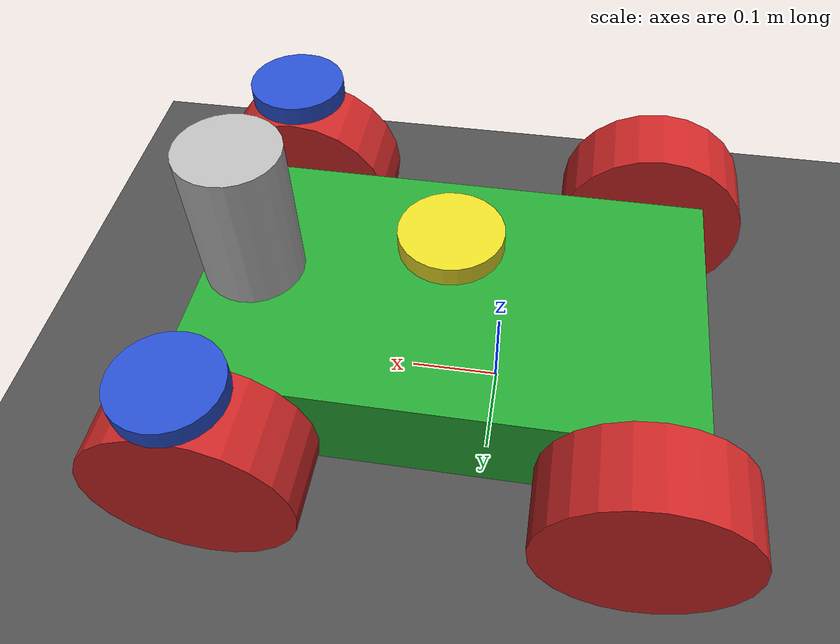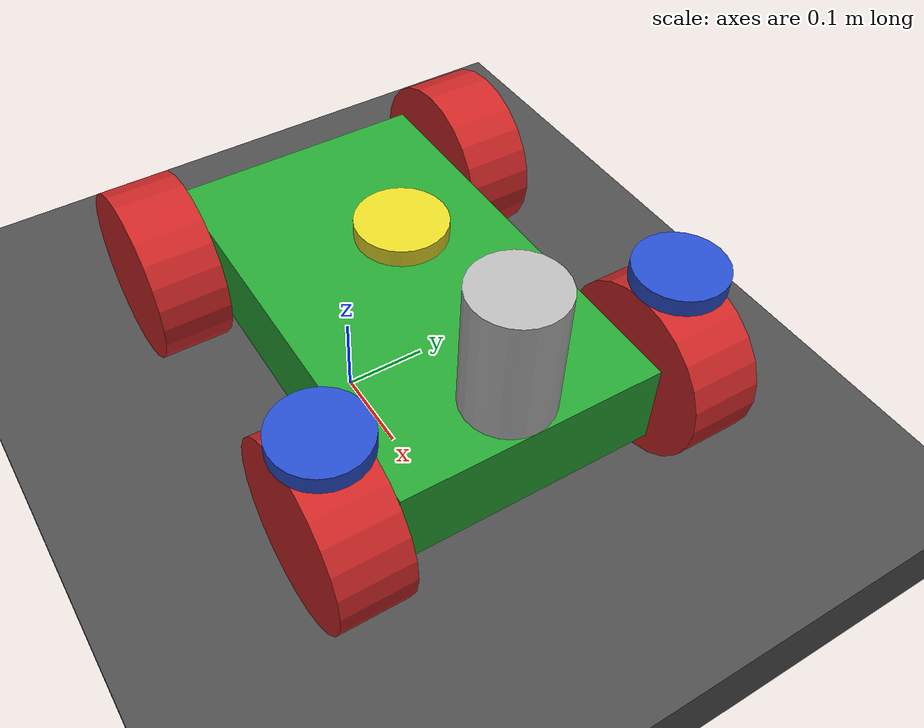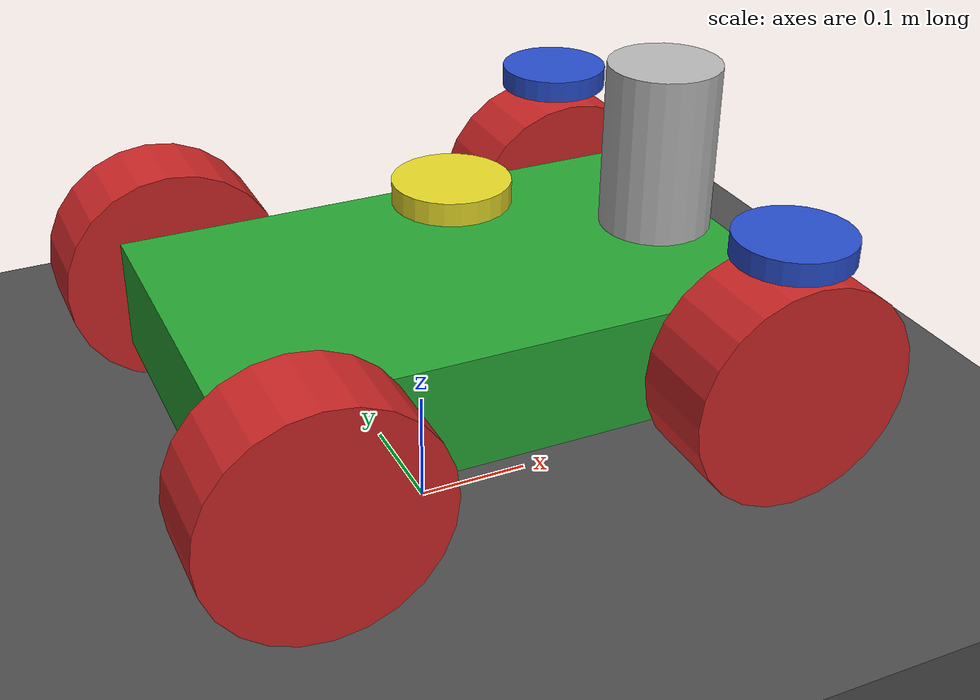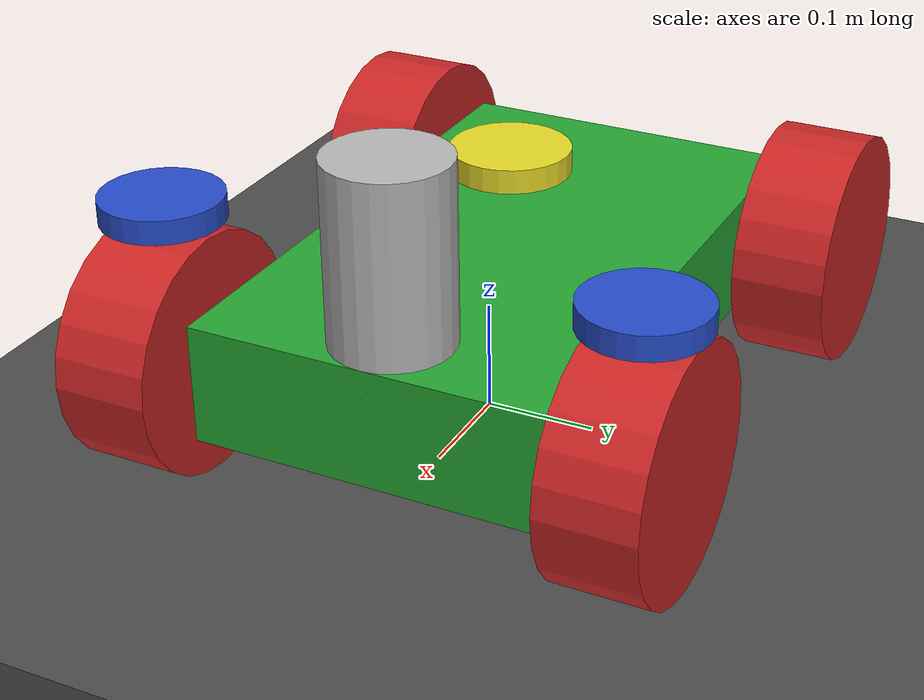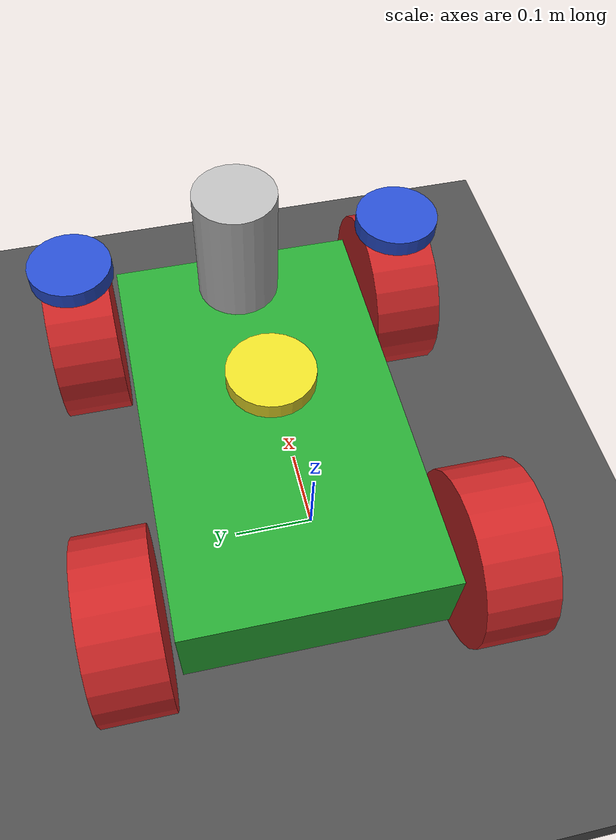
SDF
<sdf version="1.7">
 <world name="default">
  <light name="sun" type="directional">
   <pose>0 0 10 0 -0 0</pose>
   <diffuse>0.8 0.8 0.8 1</diffuse>
   <specular>0.2 0.2 0.2 1</specular>
   <attenuation>
    <range>1000</range>
    <constant>0.9</constant>
    <linear>0.01</linear>
    <quadratic>0.001</quadratic>
   </attenuation>
   <direction>-0.5 0.1 -0.9</direction>
   <spot><inner_angle>0</inner_angle><outer_angle>0</outer_angle><falloff>0</falloff></spot>
  </light>
  <model name="ground_plane">
   <static>1</static>
   <link name="link">
    <collision name="collision">
     <geometry><plane><normal>0 0 1</normal><size>100 100</size></plane></geometry>
     <surface>
      <contact><collide_bitmask>65535</collide_bitmask></contact>
      <friction><ode><mu>100</mu><mu2>50</mu2></ode></friction>
     </surface>
    </collision>
    <visual name="visual">
     <cast_shadows>0</cast_shadows>
     <geometry><plane><normal>0 0 1</normal><size>100 100</size></plane></geometry>
     <material>
      <script><uri>file://media/materials/scripts/gazebo.material</uri><name>Gazebo/Grey</name></script>
     </material>
    </visual>
   </link>
  </model>
  <gravity>0 0 -9.8</gravity>
  <magnetic_field>6e-06 2.3e-05 -4.2e-05</magnetic_field>
  <atmosphere type="adiabatic"/>
  <physics name="default_physics" default="0" type="ode">
   <max_step_size>0.001</max_step_size>
   <real_time_factor>1</real_time_factor>
   <real_time_update_rate>1000</real_time_update_rate>
  </physics>
  <scene><ambient>0.4 0.4 0.4 1</ambient><background>0.7 0.7 0.7 1</background><shadows>1</shadows></scene>
  <audio><device>default</device></audio>
  <spherical_coordinates>
   <surface_model>EARTH_WGS84</surface_model>
   <latitude_deg>0</latitude_deg>
   <longitude_deg>0</longitude_deg>
   <elevation>0</elevation>
   <heading_deg>0</heading_deg>
  </spherical_coordinates>
  <model name="asphalt_plane">
   <static>1</static>
   <link name="link">
    <collision name="collision"><geometry><box><size>20 20 0.1</size></box></geometry></collision>
    <visual name="visual">
     <cast_shadows>0</cast_shadows>
     <geometry><box><size>20 20 0.1</size></box></geometry>
     <material>
      <script>
       <uri>model://asphalt_plane/materials/scripts</uri>
       <uri>model://asphalt_plane/materials/textures</uri>
       <name>vrc/asphalt</name>
      </script>
     </material>
    </visual>
   </link>
   <pose>-0.576834 -0.025639 0 0 -0 0</pose>
  </model>
  <model name="steer_bot">
   <link name="base_link">
    <inertial>
     <mass>5.00001</mass>
     <inertia>
      <ixx>0.0416678</ixx>
      <ixy>0</ixy>
      <ixz>-2e-07</ixz>
      <iyy>0.108335</iyy>
      <iyz>0</iyz>
      <izz>0.141668</izz>
     </inertia>
    </inertial>
    <collision name="base_link_collision"><geometry><box><size>0.5 0.3 0.1</size></box></geometry></collision>
    <collision name="base_link_fixed_joint_lump__laser_sensor_link_collision_1">
     <pose>0.2 0 0.1 0 -0 0</pose>
     <geometry><box><size>0.1 0.1 0.1</size></box></geometry>
    </collision>
    <visual name="base_link_visual">
     <geometry><box><size>0.5 0.3 0.1</size></box></geometry>
     <material>
      <script><name>Gazebo/Green</name><uri>file://media/materials/scripts/gazebo.material</uri></script>
     </material>
    </visual>
    <visual name="base_link_fixed_joint_lump__laser_sensor_link_visual_1">
     <pose>0.2 0 0.1 0 -0 0</pose>
     <geometry><cylinder><length>0.2</length><radius>0.05</radius></cylinder></geometry>
    </visual>
    <sensor name="head_hokuyo_sensor" type="ray">
     <visualize>0</visualize>
     <update_rate>40</update_rate>
     <ray>
      <scan>
       <horizontal>
        <samples>720</samples>
        <resolution>1</resolution>
        <min_angle>-1.5708</min_angle>
        <max_angle>1.5708</max_angle>
       </horizontal>
       <vertical><samples>1</samples><min_angle>0</min_angle><max_angle>0</max_angle></vertical>
      </scan>
      <range><min>0.1</min><max>30</max><resolution>0.01</resolution></range>
      <noise><type>gaussian</type><mean>0</mean><stddev>0.01</stddev></noise>
     </ray>
     <plugin name="gazebo_ros_head_hokuyo_controller" filename="libgazebo_ros_laser.so">
      <topicName>/steer_bot/laser/scan</topicName>
      <frameName>laser_sensor_link</frameName>
      <robotNamespace>/steer_bot/</robotNamespace>
     </plugin>
     <pose>0.2 0 0.1 0 -0 0</pose>
    </sensor>
   </link>
   <joint name="front_left_steer_joint" type="revolute">
    <pose relative_to="base_link">0.2 0.2 0.12 0 -0 0</pose>
    <parent>base_link</parent>
    <child>front_left_steer_link</child>
    <axis>
     <xyz>0 0 1</xyz>
     <limit><lower>-0.785398</lower><upper>0.785398</upper><effort>10</effort><velocity>5</velocity></limit>
     <dynamics><spring_reference>0</spring_reference><spring_stiffness>0</spring_stiffness></dynamics>
    </axis>
   </joint>
   <link name="front_left_steer_link">
    <pose relative_to="front_left_steer_joint">0 0 0 0 -0 0</pose>
    <inertial>
     <mass>1</mass>
     <inertia>
      <ixx>0.000658333</ixx>
      <ixy>0</ixy>
      <ixz>0</ixz>
      <iyy>0.000658333</iyy>
      <iyz>0</iyz>
      <izz>0.00125</izz>
     </inertia>
    </inertial>
    <collision name="front_left_steer_link_collision">
     <geometry><cylinder><length>0.02</length><radius>0.05</radius></cylinder></geometry>
    </collision>
    <visual name="front_left_steer_link_visual">
     <geometry><cylinder><length>0.02</length><radius>0.05</radius></cylinder></geometry>
     <material>
      <script><name>Gazebo/Blue</name><uri>file://media/materials/scripts/gazebo.material</uri></script>
     </material>
    </visual>
   </link>
   <joint name="front_left_wheel_joint" type="revolute">
    <pose relative_to="front_left_steer_link">0 0 -0.12 -1.5708 0 0</pose>
    <parent>front_left_steer_link</parent>
    <child>front_left_wheel_link</child>
    <axis>
     <xyz>0 0 1</xyz>
     <limit><lower>-1e+16</lower><upper>1e+16</upper></limit>
     <dynamics><spring_reference>0</spring_reference><spring_stiffness>0</spring_stiffness></dynamics>
    </axis>
   </joint>
   <link name="front_left_wheel_link">
    <pose relative_to="front_left_wheel_joint">0 0 0 0 -0 0</pose>
    <inertial>
     <mass>1</mass>
     <inertia>
      <ixx>0.00303333</ixx>
      <ixy>0</ixy>
      <ixz>0</ixz>
      <iyy>0.00303333</iyy>
      <iyz>0</iyz>
      <izz>0.005</izz>
     </inertia>
    </inertial>
    <collision name="front_left_wheel_link_collision">
     <geometry><cylinder><length>0.08</length><radius>0.1</radius></cylinder></geometry>
    </collision>
    <visual name="front_left_wheel_link_visual">
     <geometry><cylinder><length>0.08</length><radius>0.1</radius></cylinder></geometry>
     <material>
      <script><name>Gazebo/Red</name><uri>file://media/materials/scripts/gazebo.material</uri></script>
     </material>
    </visual>
   </link>
   <joint name="front_right_steer_joint" type="revolute">
    <pose relative_to="base_link">0.2 -0.2 0.12 0 -0 0</pose>
    <parent>base_link</parent>
    <child>front_right_steer_link</child>
    <axis>
     <xyz>0 0 1</xyz>
     <limit><lower>-0.785398</lower><upper>0.785398</upper><effort>10</effort><velocity>5</velocity></limit>
     <dynamics><spring_reference>0</spring_reference><spring_stiffness>0</spring_stiffness></dynamics>
    </axis>
   </joint>
   <link name="front_right_steer_link">
    <pose relative_to="front_right_steer_joint">0 0 0 0 -0 0</pose>
    <inertial>
     <mass>1</mass>
     <inertia>
      <ixx>0.000658333</ixx>
      <ixy>0</ixy>
      <ixz>0</ixz>
      <iyy>0.000658333</iyy>
      <iyz>0</iyz>
      <izz>0.00125</izz>
     </inertia>
    </inertial>
    <collision name="front_right_steer_link_collision">
     <geometry><cylinder><length>0.02</length><radius>0.05</radius></cylinder></geometry>
    </collision>
    <visual name="front_right_steer_link_visual">
     <geometry><cylinder><length>0.02</length><radius>0.05</radius></cylinder></geometry>
     <material>
      <script><name>Gazebo/Blue</name><uri>file://media/materials/scripts/gazebo.material</uri></script>
     </material>
    </visual>
   </link>
   <joint name="front_right_wheel_joint" type="revolute">
    <pose relative_to="front_right_steer_link">0 0 -0.12 -1.5708 0 0</pose>
    <parent>front_right_steer_link</parent>
    <child>front_right_wheel_link</child>
    <axis>
     <xyz>0 0 1</xyz>
     <limit><lower>-1e+16</lower><upper>1e+16</upper></limit>
     <dynamics><spring_reference>0</spring_reference><spring_stiffness>0</spring_stiffness></dynamics>
    </axis>
   </joint>
   <link name="front_right_wheel_link">
    <pose relative_to="front_right_wheel_joint">0 0 0 0 -0 0</pose>
    <inertial>
     <mass>1</mass>
     <inertia>
      <ixx>0.00303333</ixx>
      <ixy>0</ixy>
      <ixz>0</ixz>
      <iyy>0.00303333</iyy>
      <iyz>0</iyz>
      <izz>0.005</izz>
     </inertia>
    </inertial>
    <collision name="front_right_wheel_link_collision">
     <geometry><cylinder><length>0.08</length><radius>0.1</radius></cylinder></geometry>
    </collision>
    <visual name="front_right_wheel_link_visual">
     <geometry><cylinder><length>0.08</length><radius>0.1</radius></cylinder></geometry>
     <material>
      <script><name>Gazebo/Red</name><uri>file://media/materials/scripts/gazebo.material</uri></script>
     </material>
    </visual>
   </link>
   <joint name="front_steer_joint" type="revolute">
    <pose relative_to="base_link">0 0 0.12 0 -0 0</pose>
    <parent>base_link</parent>
    <child>front_steer_link</child>
    <axis>
     <xyz>0 0 1</xyz>
     <limit><lower>-3.14159</lower><upper>3.14159</upper><effort>10</effort><velocity>5</velocity></limit>
     <dynamics><spring_reference>0</spring_reference><spring_stiffness>0</spring_stiffness></dynamics>
    </axis>
   </joint>
   <link name="front_steer_link">
    <pose relative_to="front_steer_joint">0 0 0 0 -0 0</pose>
    <inertial>
     <mass>1</mass>
     <inertia>
      <ixx>0.000658333</ixx>
      <ixy>0</ixy>
      <ixz>0</ixz>
      <iyy>0.000658333</iyy>
      <iyz>0</iyz>
      <izz>0.00125</izz>
     </inertia>
    </inertial>
    <collision name="front_steer_link_collision">
     <geometry><cylinder><length>0.02</length><radius>0.05</radius></cylinder></geometry>
    </collision>
    <visual name="front_steer_link_visual">
     <geometry><cylinder><length>0.02</length><radius>0.05</radius></cylinder></geometry>
     <material>
      <script><name>Gazebo/Yellow</name><uri>file://media/materials/scripts/gazebo.material</uri></script>
     </material>
    </visual>
   </link>
   <joint name="rear_left_wheel_joint" type="revolute">
    <pose relative_to="base_link">-0.2 0.2 0 -1.5708 0 0</pose>
    <parent>base_link</parent>
    <child>rear_left_wheel_link</child>
    <axis>
     <xyz>0 0 1</xyz>
     <limit><lower>-1e+16</lower><upper>1e+16</upper></limit>
     <dynamics><spring_reference>0</spring_reference><spring_stiffness>0</spring_stiffness></dynamics>
    </axis>
   </joint>
   <link name="rear_left_wheel_link">
    <pose relative_to="rear_left_wheel_joint">0 0 0 0 -0 0</pose>
    <inertial>
     <mass>1</mass>
     <inertia>
      <ixx>0.00303333</ixx>
      <ixy>0</ixy>
      <ixz>0</ixz>
      <iyy>0.00303333</iyy>
      <iyz>0</iyz>
      <izz>0.005</izz>
     </inertia>
    </inertial>
    <collision name="rear_left_wheel_link_collision">
     <geometry><cylinder><length>0.08</length><radius>0.1</radius></cylinder></geometry>
    </collision>
    <visual name="rear_left_wheel_link_visual">
     <geometry><cylinder><length>0.08</length><radius>0.1</radius></cylinder></geometry>
     <material>
      <script><name>Gazebo/Red</name><uri>file://media/materials/scripts/gazebo.material</uri></script>
     </material>
    </visual>
   </link>
   <joint name="rear_right_wheel_joint" type="revolute">
    <pose relative_to="base_link">-0.2 -0.2 0 -1.5708 0 0</pose>
    <parent>base_link</parent>
    <child>rear_right_wheel_link</child>
    <axis>
     <xyz>0 0 1</xyz>
     <limit><lower>-1e+16</lower><upper>1e+16</upper></limit>
     <dynamics><spring_reference>0</spring_reference><spring_stiffness>0</spring_stiffness></dynamics>
    </axis>
   </joint>
   <link name="rear_right_wheel_link">
    <pose relative_to="rear_right_wheel_joint">0 0 0 0 -0 0</pose>
    <inertial>
     <mass>1</mass>
     <inertia>
      <ixx>0.00303333</ixx>
      <ixy>0</ixy>
      <ixz>0</ixz>
      <iyy>0.00303333</iyy>
      <iyz>0</iyz>
      <izz>0.005</izz>
     </inertia>
    </inertial>
    <collision name="rear_right_wheel_link_collision">
     <geometry><cylinder><length>0.08</length><radius>0.1</radius></cylinder></geometry>
    </collision>
    <visual name="rear_right_wheel_link_visual">
     <geometry><cylinder><length>0.08</length><radius>0.1</radius></cylinder></geometry>
     <material>
      <script><name>Gazebo/Red</name><uri>file://media/materials/scripts/gazebo.material</uri></script>
     </material>
    </visual>
   </link>
   <joint name="rear_wheel_joint" type="revolute">
    <pose relative_to="base_link">-0.2 0 0 -1.5708 0 0</pose>
    <parent>base_link</parent>
    <child>rear_wheel_link</child>
    <axis>
     <xyz>0 0 1</xyz>
     <limit><lower>-1e+16</lower><upper>1e+16</upper></limit>
     <dynamics><spring_reference>0</spring_reference><spring_stiffness>0</spring_stiffness></dynamics>
    </axis>
   </joint>
   <link name="rear_wheel_link">
    <pose relative_to="rear_wheel_joint">0 0 0 0 -0 0</pose>
    <inertial>
     <mass>0.03125</mass>
     <inertia>
      <ixx>9.04948e-06</ixx>
      <ixy>0</ixy>
      <ixz>0</ixz>
      <iyy>9.04948e-06</iyy>
      <iyz>0</iyz>
      <izz>9.76563e-06</izz>
     </inertia>
    </inertial>
    <collision name="rear_wheel_link_collision">
     <geometry><cylinder><length>0.04</length><radius>0.025</radius></cylinder></geometry>
    </collision>
    <visual name="rear_wheel_link_visual">
     <geometry><cylinder><length>0.04</length><radius>0.025</radius></cylinder></geometry>
     <material>
      <script><name>Gazebo/Yellow</name><uri>file://media/materials/scripts/gazebo.material</uri></script>
     </material>
    </visual>
   </link>
   <static>0</static>
   <plugin name="gazebo_ros_control" filename="libgazebo_ros_control.so">
    <robotNamespace>/steer_bot</robotNamespace>
    <robotSimType>steer_bot_hardware_gazebo/SteerBotHardwareGazebo</robotSimType>
    <legacyModeNS>0</legacyModeNS>
   </plugin>
   <pose>0.047725 0.043478 0.15 0 -0 -0.005241</pose>
  </model>
 </world>
</sdf>
